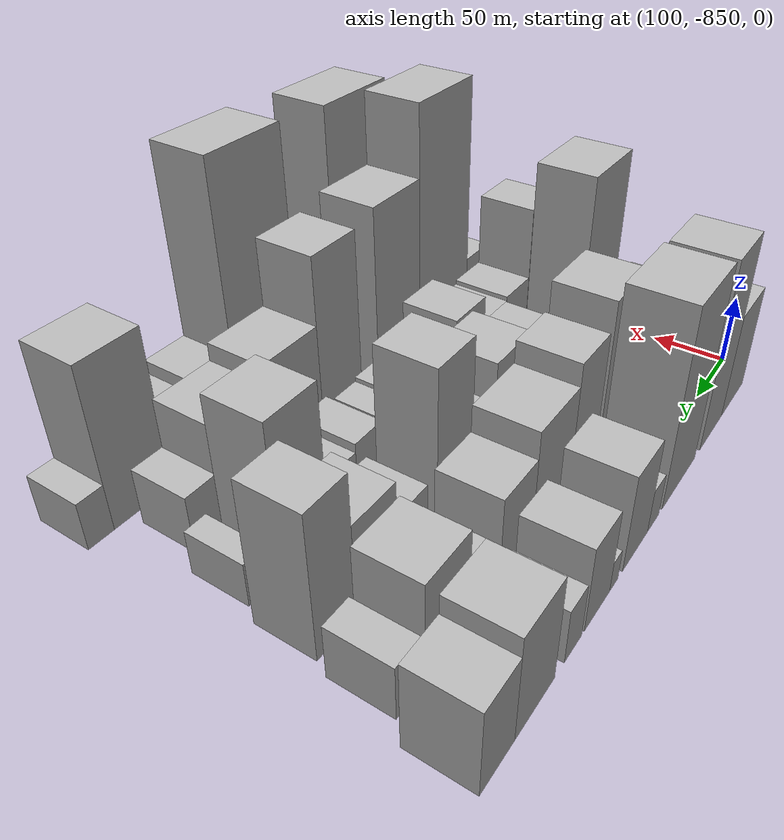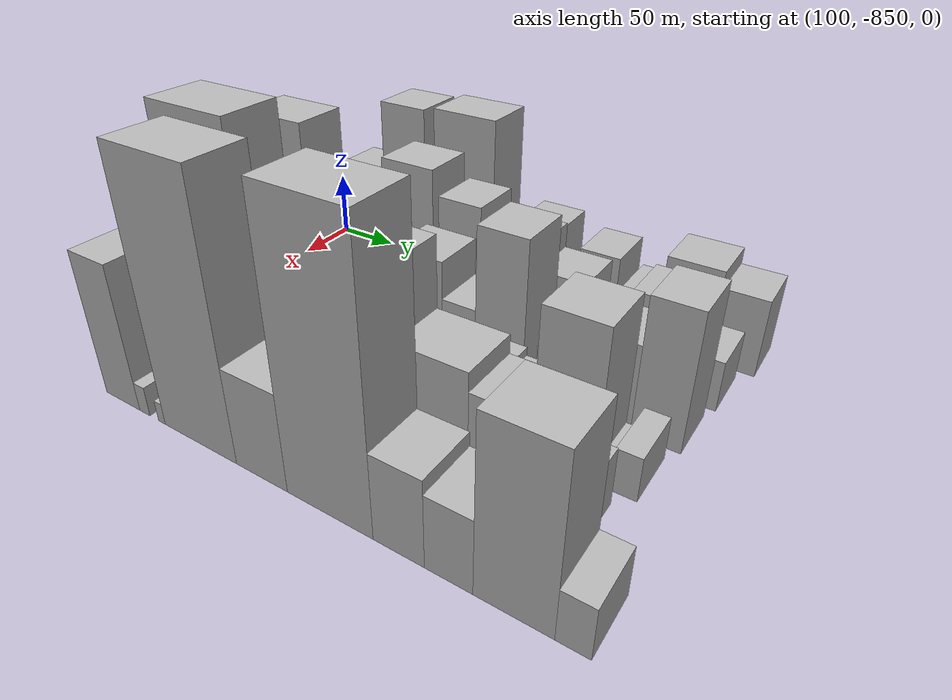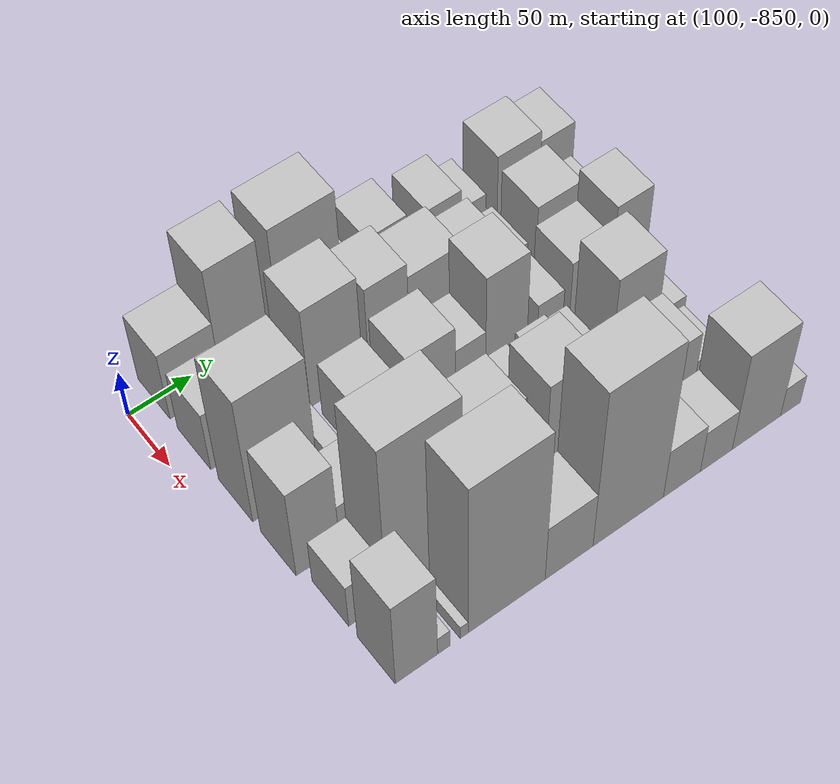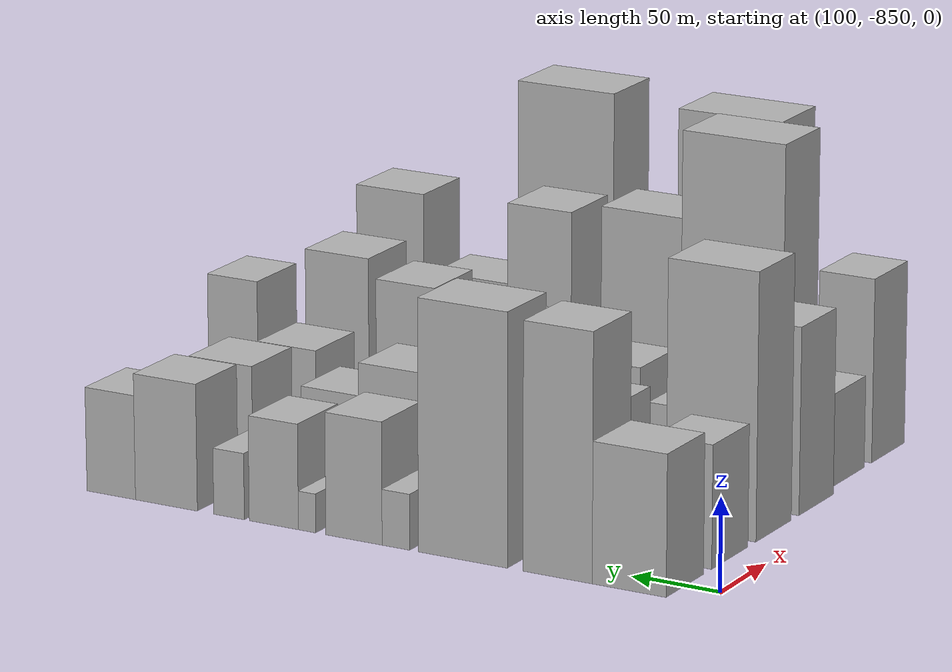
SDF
<sdf version="1.6">
 <world name="default">
  <model name="building_1">
   <static>1</static>
   <pose>100.0000 -809.0275 0 0.000000 0.000000 0.000000</pose>
   <link name="link">
    <pose>0 0 37.50 0 0 0</pose>
    <collision name="collision"><geometry><box><size>40.0000 41.9451 75.0000</size></box></geometry></collision>
    <visual name="visual">
     <cast_shadows>0</cast_shadows>
     <geometry><box><size>40.0000 41.9451 75.0000</size></box></geometry>
     <material>
      <script>
       <uri>model://HANNAS_wall/materials/scripts</uri>
       <uri>model://HANNAS_wall/materials/textures</uri>
       <name>vrc/HANNAS_wall</name>
      </script>
     </material>
    </visual>
   </link>
  </model>
  <model name="building_2">
   <static>1</static>
   <pose>100.0000 -768.1937 0 0.000000 0.000000 0.000000</pose>
   <link name="link">
    <pose>0 0 66.00 0 0 0</pose>
    <collision name="collision"><geometry><box><size>40.0000 39.7225 132.0000</size></box></geometry></collision>
    <visual name="visual">
     <cast_shadows>0</cast_shadows>
     <geometry><box><size>40.0000 39.7225 132.0000</size></box></geometry>
     <material>
      <script>
       <uri>model://HANNAS_wall/materials/scripts</uri>
       <uri>model://HANNAS_wall/materials/textures</uri>
       <name>vrc/HANNAS_wall</name>
      </script>
     </material>
    </visual>
   </link>
  </model>
  <model name="building_3">
   <static>1</static>
   <pose>100.0000 -713.2842 0 0.000000 0.000000 0.000000</pose>
   <link name="link">
    <pose>0 0 67.50 0 0 0</pose>
    <collision name="collision"><geometry><box><size>40.0000 52.0963 135.0000</size></box></geometry></collision>
    <visual name="visual">
     <cast_shadows>0</cast_shadows>
     <geometry><box><size>40.0000 52.0963 135.0000</size></box></geometry>
     <material>
      <script>
       <uri>model://HANNAS_wall/materials/scripts</uri>
       <uri>model://HANNAS_wall/materials/textures</uri>
       <name>vrc/HANNAS_wall</name>
      </script>
     </material>
    </visual>
   </link>
  </model>
  <model name="building_4">
   <static>1</static>
   <pose>100.0000 -674.0197 0 0.000000 0.000000 0.000000</pose>
   <link name="link">
    <pose>0 0 15.00 0 0 0</pose>
    <collision name="collision"><geometry><box><size>40.0000 16.4328 30.0000</size></box></geometry></collision>
    <visual name="visual">
     <cast_shadows>0</cast_shadows>
     <geometry><box><size>40.0000 16.4328 30.0000</size></box></geometry>
     <material>
      <script>
       <uri>model://HANNAS_wall/materials/scripts</uri>
       <uri>model://HANNAS_wall/materials/textures</uri>
       <name>vrc/HANNAS_wall</name>
      </script>
     </material>
    </visual>
   </link>
  </model>
  <model name="building_5">
   <static>1</static>
   <pose>100.0000 -649.0219 0 0.000000 0.000000 0.000000</pose>
   <link name="link">
    <pose>0 0 33.00 0 0 0</pose>
    <collision name="collision"><geometry><box><size>40.0000 33.5627 66.0000</size></box></geometry></collision>
    <visual name="visual">
     <cast_shadows>0</cast_shadows>
     <geometry><box><size>40.0000 33.5627 66.0000</size></box></geometry>
     <material>
      <script>
       <uri>model://HANNAS_wall/materials/scripts</uri>
       <uri>model://HANNAS_wall/materials/textures</uri>
       <name>vrc/HANNAS_wall</name>
      </script>
     </material>
    </visual>
   </link>
  </model>
  <model name="building_6">
   <static>1</static>
   <pose>100.0000 -621.0068 0 0.000000 0.000000 0.000000</pose>
   <link name="link">
    <pose>0 0 10.50 0 0 0</pose>
    <collision name="collision"><geometry><box><size>40.0000 10.4675 21.0000</size></box></geometry></collision>
    <visual name="visual">
     <cast_shadows>0</cast_shadows>
     <geometry><box><size>40.0000 10.4675 21.0000</size></box></geometry>
     <material>
      <script>
       <uri>model://HANNAS_wall/materials/scripts</uri>
       <uri>model://HANNAS_wall/materials/textures</uri>
       <name>vrc/HANNAS_wall</name>
      </script>
     </material>
    </visual>
   </link>
  </model>
  <model name="building_7">
   <static>1</static>
   <pose>100.0000 -600.9219 0 0.000000 0.000000 0.000000</pose>
   <link name="link">
    <pose>0 0 28.50 0 0 0</pose>
    <collision name="collision"><geometry><box><size>40.0000 29.7023 57.0000</size></box></geometry></collision>
    <visual name="visual">
     <cast_shadows>0</cast_shadows>
     <geometry><box><size>40.0000 29.7023 57.0000</size></box></geometry>
     <material>
      <script>
       <uri>model://HANNAS_wall/materials/scripts</uri>
       <uri>model://HANNAS_wall/materials/textures</uri>
       <name>vrc/HANNAS_wall</name>
      </script>
     </material>
    </visual>
   </link>
  </model>
  <model name="building_8">
   <static>1</static>
   <pose>100.0000 -573.7204 0 0.000000 0.000000 0.000000</pose>
   <link name="link">
    <pose>0 0 18.00 0 0 0</pose>
    <collision name="collision"><geometry><box><size>40.0000 18.7007 36.0000</size></box></geometry></collision>
    <visual name="visual">
     <cast_shadows>0</cast_shadows>
     <geometry><box><size>40.0000 18.7007 36.0000</size></box></geometry>
     <material>
      <script>
       <uri>model://HANNAS_wall/materials/scripts</uri>
       <uri>model://HANNAS_wall/materials/textures</uri>
       <name>vrc/HANNAS_wall</name>
      </script>
     </material>
    </visual>
   </link>
  </model>
  <model name="building_9">
   <static>1</static>
   <pose>100.0000 -535.2553 0 0.000000 0.000000 0.000000</pose>
   <link name="link">
    <pose>0 0 34.50 0 0 0</pose>
    <collision name="collision"><geometry><box><size>40.0000 38.2295 69.0000</size></box></geometry></collision>
    <visual name="visual">
     <cast_shadows>0</cast_shadows>
     <geometry><box><size>40.0000 38.2295 69.0000</size></box></geometry>
     <material>
      <script>
       <uri>model://HANNAS_wall/materials/scripts</uri>
       <uri>model://HANNAS_wall/materials/textures</uri>
       <name>vrc/HANNAS_wall</name>
      </script>
     </material>
    </visual>
   </link>
  </model>
  <model name="building_10">
   <static>1</static>
   <pose>100.0000 -501.0232 0 0.000000 0.000000 0.000000</pose>
   <link name="link">
    <pose>0 0 28.50 0 0 0</pose>
    <collision name="collision"><geometry><box><size>40.0000 30.2348 57.0000</size></box></geometry></collision>
    <visual name="visual">
     <cast_shadows>0</cast_shadows>
     <geometry><box><size>40.0000 30.2348 57.0000</size></box></geometry>
     <material>
      <script>
       <uri>model://HANNAS_wall/materials/scripts</uri>
       <uri>model://HANNAS_wall/materials/textures</uri>
       <name>vrc/HANNAS_wall</name>
      </script>
     </material>
    </visual>
   </link>
  </model>
  <model name="building_47">
   <static>1</static>
   <pose>149.0000 -813.4391 0 0.000000 0.000000 0.000000</pose>
   <link name="link">
    <pose>0 0 33.00 0 0 0</pose>
    <collision name="collision"><geometry><box><size>40.0000 33.1218 66.0000</size></box></geometry></collision>
    <visual name="visual">
     <cast_shadows>0</cast_shadows>
     <geometry><box><size>40.0000 33.1218 66.0000</size></box></geometry>
     <material>
      <script>
       <uri>model://HANNAS_wall/materials/scripts</uri>
       <uri>model://HANNAS_wall/materials/textures</uri>
       <name>vrc/HANNAS_wall</name>
      </script>
     </material>
    </visual>
   </link>
  </model>
  <model name="building_48">
   <static>1</static>
   <pose>149.0000 -781.6632 0 0.000000 0.000000 0.000000</pose>
   <link name="link">
    <pose>0 0 19.50 0 0 0</pose>
    <collision name="collision"><geometry><box><size>40.0000 20.4301 39.0000</size></box></geometry></collision>
    <visual name="visual">
     <cast_shadows>0</cast_shadows>
     <geometry><box><size>40.0000 20.4301 39.0000</size></box></geometry>
     <material>
      <script>
       <uri>model://HANNAS_wall/materials/scripts</uri>
       <uri>model://HANNAS_wall/materials/textures</uri>
       <name>vrc/HANNAS_wall</name>
      </script>
     </material>
    </visual>
   </link>
  </model>
  <model name="building_49">
   <static>1</static>
   <pose>149.0000 -758.9136 0 0.000000 0.000000 0.000000</pose>
   <link name="link">
    <pose>0 0 15.00 0 0 0</pose>
    <collision name="collision"><geometry><box><size>40.0000 17.0690 30.0000</size></box></geometry></collision>
    <visual name="visual">
     <cast_shadows>0</cast_shadows>
     <geometry><box><size>40.0000 17.0690 30.0000</size></box></geometry>
     <material>
      <script>
       <uri>model://HANNAS_wall/materials/scripts</uri>
       <uri>model://HANNAS_wall/materials/textures</uri>
       <name>vrc/HANNAS_wall</name>
      </script>
     </material>
    </visual>
   </link>
  </model>
  <model name="building_50">
   <static>1</static>
   <pose>149.0000 -728.6006 0 0.000000 0.000000 0.000000</pose>
   <link name="link">
    <pose>0 0 55.50 0 0 0</pose>
    <collision name="collision"><geometry><box><size>40.0000 43.5572 111.0000</size></box></geometry></collision>
    <visual name="visual">
     <cast_shadows>0</cast_shadows>
     <geometry><box><size>40.0000 43.5572 111.0000</size></box></geometry>
     <material>
      <script>
       <uri>model://HANNAS_wall/materials/scripts</uri>
       <uri>model://HANNAS_wall/materials/textures</uri>
       <name>vrc/HANNAS_wall</name>
      </script>
     </material>
    </visual>
   </link>
  </model>
  <model name="building_51">
   <static>1</static>
   <pose>149.0000 -684.7399 0 0.000000 0.000000 0.000000</pose>
   <link name="link">
    <pose>0 0 46.50 0 0 0</pose>
    <collision name="collision"><geometry><box><size>40.0000 34.1642 93.0000</size></box></geometry></collision>
    <visual name="visual">
     <cast_shadows>0</cast_shadows>
     <geometry><box><size>40.0000 34.1642 93.0000</size></box></geometry>
     <material>
      <script>
       <uri>model://HANNAS_wall/materials/scripts</uri>
       <uri>model://HANNAS_wall/materials/textures</uri>
       <name>vrc/HANNAS_wall</name>
      </script>
     </material>
    </visual>
   </link>
  </model>
  <model name="building_52">
   <static>1</static>
   <pose>149.0000 -645.3906 0 0.000000 0.000000 0.000000</pose>
   <link name="link">
    <pose>0 0 39.00 0 0 0</pose>
    <collision name="collision"><geometry><box><size>40.0000 44.5344 78.0000</size></box></geometry></collision>
    <visual name="visual">
     <cast_shadows>0</cast_shadows>
     <geometry><box><size>40.0000 44.5344 78.0000</size></box></geometry>
     <material>
      <script>
       <uri>model://HANNAS_wall/materials/scripts</uri>
       <uri>model://HANNAS_wall/materials/textures</uri>
       <name>vrc/HANNAS_wall</name>
      </script>
     </material>
    </visual>
   </link>
  </model>
  <model name="building_53">
   <static>1</static>
   <pose>149.0000 -605.6415 0 0.000000 0.000000 0.000000</pose>
   <link name="link">
    <pose>0 0 30.00 0 0 0</pose>
    <collision name="collision"><geometry><box><size>40.0000 34.9639 60.0000</size></box></geometry></collision>
    <visual name="visual">
     <cast_shadows>0</cast_shadows>
     <geometry><box><size>40.0000 34.9639 60.0000</size></box></geometry>
     <material>
      <script>
       <uri>model://HANNAS_wall/materials/scripts</uri>
       <uri>model://HANNAS_wall/materials/textures</uri>
       <name>vrc/HANNAS_wall</name>
      </script>
     </material>
    </visual>
   </link>
  </model>
  <model name="building_54">
   <static>1</static>
   <pose>149.0000 -575.5908 0 0.000000 0.000000 0.000000</pose>
   <link name="link">
    <pose>0 0 16.50 0 0 0</pose>
    <collision name="collision"><geometry><box><size>40.0000 19.1374 33.0000</size></box></geometry></collision>
    <visual name="visual">
     <cast_shadows>0</cast_shadows>
     <geometry><box><size>40.0000 19.1374 33.0000</size></box></geometry>
     <material>
      <script>
       <uri>model://HANNAS_wall/materials/scripts</uri>
       <uri>model://HANNAS_wall/materials/textures</uri>
       <name>vrc/HANNAS_wall</name>
      </script>
     </material>
    </visual>
   </link>
  </model>
  <model name="building_55">
   <static>1</static>
   <pose>149.0000 -538.6001 0 0.000000 0.000000 0.000000</pose>
   <link name="link">
    <pose>0 0 33.00 0 0 0</pose>
    <collision name="collision"><geometry><box><size>40.0000 38.8440 66.0000</size></box></geometry></collision>
    <visual name="visual">
     <cast_shadows>0</cast_shadows>
     <geometry><box><size>40.0000 38.8440 66.0000</size></box></geometry>
     <material>
      <script>
       <uri>model://HANNAS_wall/materials/scripts</uri>
       <uri>model://HANNAS_wall/materials/textures</uri>
       <name>vrc/HANNAS_wall</name>
      </script>
     </material>
    </visual>
   </link>
  </model>
  <model name="building_56">
   <static>1</static>
   <pose>149.0000 -506.0128 0 0.000000 0.000000 0.000000</pose>
   <link name="link">
    <pose>0 0 18.00 0 0 0</pose>
    <collision name="collision"><geometry><box><size>40.0000 20.3304 36.0000</size></box></geometry></collision>
    <visual name="visual">
     <cast_shadows>0</cast_shadows>
     <geometry><box><size>40.0000 20.3304 36.0000</size></box></geometry>
     <material>
      <script>
       <uri>model://HANNAS_wall/materials/scripts</uri>
       <uri>model://HANNAS_wall/materials/textures</uri>
       <name>vrc/HANNAS_wall</name>
      </script>
     </material>
    </visual>
   </link>
  </model>
  <model name="building_95">
   <static>1</static>
   <pose>198.0000 -803.9887 0 0.000000 0.000000 0.000000</pose>
   <link name="link">
    <pose>0 0 72.00 0 0 0</pose>
    <collision name="collision"><geometry><box><size>40.0000 52.0225 144.0000</size></box></geometry></collision>
    <visual name="visual">
     <cast_shadows>0</cast_shadows>
     <geometry><box><size>40.0000 52.0225 144.0000</size></box></geometry>
     <material>
      <script>
       <uri>model://HANNAS_wall/materials/scripts</uri>
       <uri>model://HANNAS_wall/materials/textures</uri>
       <name>vrc/HANNAS_wall</name>
      </script>
     </material>
    </visual>
   </link>
  </model>
  <model name="building_96">
   <static>1</static>
   <pose>198.0000 -763.5319 0 0.000000 0.000000 0.000000</pose>
   <link name="link">
    <pose>0 0 13.50 0 0 0</pose>
    <collision name="collision"><geometry><box><size>40.0000 12.8911 27.0000</size></box></geometry></collision>
    <visual name="visual">
     <cast_shadows>0</cast_shadows>
     <geometry><box><size>40.0000 12.8911 27.0000</size></box></geometry>
     <material>
      <script>
       <uri>model://HANNAS_wall/materials/scripts</uri>
       <uri>model://HANNAS_wall/materials/textures</uri>
       <name>vrc/HANNAS_wall</name>
      </script>
     </material>
    </visual>
   </link>
  </model>
  <model name="building_97">
   <static>1</static>
   <pose>198.0000 -729.2786 0 0.000000 0.000000 0.000000</pose>
   <link name="link">
    <pose>0 0 30.00 0 0 0</pose>
    <collision name="collision"><geometry><box><size>40.0000 35.6156 60.0000</size></box></geometry></collision>
    <visual name="visual">
     <cast_shadows>0</cast_shadows>
     <geometry><box><size>40.0000 35.6156 60.0000</size></box></geometry>
     <material>
      <script>
       <uri>model://HANNAS_wall/materials/scripts</uri>
       <uri>model://HANNAS_wall/materials/textures</uri>
       <name>vrc/HANNAS_wall</name>
      </script>
     </material>
    </visual>
   </link>
  </model>
  <model name="building_98">
   <static>1</static>
   <pose>198.0000 -685.6175 0 0.000000 0.000000 0.000000</pose>
   <link name="link">
    <pose>0 0 37.50 0 0 0</pose>
    <collision name="collision"><geometry><box><size>40.0000 39.7067 75.0000</size></box></geometry></collision>
    <visual name="visual">
     <cast_shadows>0</cast_shadows>
     <geometry><box><size>40.0000 39.7067 75.0000</size></box></geometry>
     <material>
      <script>
       <uri>model://HANNAS_wall/materials/scripts</uri>
       <uri>model://HANNAS_wall/materials/textures</uri>
       <name>vrc/HANNAS_wall</name>
      </script>
     </material>
    </visual>
   </link>
  </model>
  <model name="building_99">
   <static>1</static>
   <pose>198.0000 -653.0751 0 0.000000 0.000000 0.000000</pose>
   <link name="link">
    <pose>0 0 24.00 0 0 0</pose>
    <collision name="collision"><geometry><box><size>40.0000 25.3780 48.0000</size></box></geometry></collision>
    <visual name="visual">
     <cast_shadows>0</cast_shadows>
     <geometry><box><size>40.0000 25.3780 48.0000</size></box></geometry>
     <material>
      <script>
       <uri>model://HANNAS_wall/materials/scripts</uri>
       <uri>model://HANNAS_wall/materials/textures</uri>
       <name>vrc/HANNAS_wall</name>
      </script>
     </material>
    </visual>
   </link>
  </model>
  <model name="building_100">
   <static>1</static>
   <pose>198.0000 -622.5888 0 0.000000 0.000000 0.000000</pose>
   <link name="link">
    <pose>0 0 54.00 0 0 0</pose>
    <collision name="collision"><geometry><box><size>40.0000 35.5946 108.0000</size></box></geometry></collision>
    <visual name="visual">
     <cast_shadows>0</cast_shadows>
     <geometry><box><size>40.0000 35.5946 108.0000</size></box></geometry>
     <material>
      <script>
       <uri>model://HANNAS_wall/materials/scripts</uri>
       <uri>model://HANNAS_wall/materials/textures</uri>
       <name>vrc/HANNAS_wall</name>
      </script>
     </material>
    </visual>
   </link>
  </model>
  <model name="building_101">
   <static>1</static>
   <pose>198.0000 -584.6064 0 0.000000 0.000000 0.000000</pose>
   <link name="link">
    <pose>0 0 19.50 0 0 0</pose>
    <collision name="collision"><geometry><box><size>40.0000 22.3702 39.0000</size></box></geometry></collision>
    <visual name="visual">
     <cast_shadows>0</cast_shadows>
     <geometry><box><size>40.0000 22.3702 39.0000</size></box></geometry>
     <material>
      <script>
       <uri>model://HANNAS_wall/materials/scripts</uri>
       <uri>model://HANNAS_wall/materials/textures</uri>
       <name>vrc/HANNAS_wall</name>
      </script>
     </material>
    </visual>
   </link>
  </model>
  <model name="building_102">
   <static>1</static>
   <pose>198.0000 -549.4436 0 0.000000 0.000000 0.000000</pose>
   <link name="link">
    <pose>0 0 31.50 0 0 0</pose>
    <collision name="collision"><geometry><box><size>40.0000 35.9553 63.0000</size></box></geometry></collision>
    <visual name="visual">
     <cast_shadows>0</cast_shadows>
     <geometry><box><size>40.0000 35.9553 63.0000</size></box></geometry>
     <material>
      <script>
       <uri>model://HANNAS_wall/materials/scripts</uri>
       <uri>model://HANNAS_wall/materials/textures</uri>
       <name>vrc/HANNAS_wall</name>
      </script>
     </material>
    </visual>
   </link>
  </model>
  <model name="building_103">
   <static>1</static>
   <pose>198.0000 -515.9326 0 0.000000 0.000000 0.000000</pose>
   <link name="link">
    <pose>0 0 48.00 0 0 0</pose>
    <collision name="collision"><geometry><box><size>40.0000 31.0666 96.0000</size></box></geometry></collision>
    <visual name="visual">
     <cast_shadows>0</cast_shadows>
     <geometry><box><size>40.0000 31.0666 96.0000</size></box></geometry>
     <material>
      <script>
       <uri>model://HANNAS_wall/materials/scripts</uri>
       <uri>model://HANNAS_wall/materials/textures</uri>
       <name>vrc/HANNAS_wall</name>
      </script>
     </material>
    </visual>
   </link>
  </model>
  <model name="building_147">
   <static>1</static>
   <pose>247.0000 -812.9321 0 0.000000 0.000000 0.000000</pose>
   <link name="link">
    <pose>0 0 51.00 0 0 0</pose>
    <collision name="collision"><geometry><box><size>40.0000 34.1358 102.0000</size></box></geometry></collision>
    <visual name="visual">
     <cast_shadows>0</cast_shadows>
     <geometry><box><size>40.0000 34.1358 102.0000</size></box></geometry>
     <material>
      <script>
       <uri>model://HANNAS_wall/materials/scripts</uri>
       <uri>model://HANNAS_wall/materials/textures</uri>
       <name>vrc/HANNAS_wall</name>
      </script>
     </material>
    </visual>
   </link>
  </model>
  <model name="building_148">
   <static>1</static>
   <pose>247.0000 -780.7460 0 0.000000 0.000000 0.000000</pose>
   <link name="link">
    <pose>0 0 25.50 0 0 0</pose>
    <collision name="collision"><geometry><box><size>40.0000 30.2364 51.0000</size></box></geometry></collision>
    <visual name="visual">
     <cast_shadows>0</cast_shadows>
     <geometry><box><size>40.0000 30.2364 51.0000</size></box></geometry>
     <material>
      <script>
       <uri>model://HANNAS_wall/materials/scripts</uri>
       <uri>model://HANNAS_wall/materials/textures</uri>
       <name>vrc/HANNAS_wall</name>
      </script>
     </material>
    </visual>
   </link>
  </model>
  <model name="building_149">
   <static>1</static>
   <pose>247.0000 -753.4497 0 0.000000 0.000000 0.000000</pose>
   <link name="link">
    <pose>0 0 24.00 0 0 0</pose>
    <collision name="collision"><geometry><box><size>40.0000 24.3560 48.0000</size></box></geometry></collision>
    <visual name="visual">
     <cast_shadows>0</cast_shadows>
     <geometry><box><size>40.0000 24.3560 48.0000</size></box></geometry>
     <material>
      <script>
       <uri>model://HANNAS_wall/materials/scripts</uri>
       <uri>model://HANNAS_wall/materials/textures</uri>
       <name>vrc/HANNAS_wall</name>
      </script>
     </material>
    </visual>
   </link>
  </model>
  <model name="building_150">
   <static>1</static>
   <pose>247.0000 -719.1406 0 0.000000 0.000000 0.000000</pose>
   <link name="link">
    <pose>0 0 33.00 0 0 0</pose>
    <collision name="collision"><geometry><box><size>40.0000 34.2622 66.0000</size></box></geometry></collision>
    <visual name="visual">
     <cast_shadows>0</cast_shadows>
     <geometry><box><size>40.0000 34.2622 66.0000</size></box></geometry>
     <material>
      <script>
       <uri>model://HANNAS_wall/materials/scripts</uri>
       <uri>model://HANNAS_wall/materials/textures</uri>
       <name>vrc/HANNAS_wall</name>
      </script>
     </material>
    </visual>
   </link>
  </model>
  <model name="building_151">
   <static>1</static>
   <pose>247.0000 -687.9479 0 0.000000 0.000000 0.000000</pose>
   <link name="link">
    <pose>0 0 19.50 0 0 0</pose>
    <collision name="collision"><geometry><box><size>40.0000 20.1233 39.0000</size></box></geometry></collision>
    <visual name="visual">
     <cast_shadows>0</cast_shadows>
     <geometry><box><size>40.0000 20.1233 39.0000</size></box></geometry>
     <material>
      <script>
       <uri>model://HANNAS_wall/materials/scripts</uri>
       <uri>model://HANNAS_wall/materials/textures</uri>
       <name>vrc/HANNAS_wall</name>
      </script>
     </material>
    </visual>
   </link>
  </model>
  <model name="building_152">
   <static>1</static>
   <pose>247.0000 -660.7308 0 0.000000 0.000000 0.000000</pose>
   <link name="link">
    <pose>0 0 19.50 0 0 0</pose>
    <collision name="collision"><geometry><box><size>40.0000 20.3109 39.0000</size></box></geometry></collision>
    <visual name="visual">
     <cast_shadows>0</cast_shadows>
     <geometry><box><size>40.0000 20.3109 39.0000</size></box></geometry>
     <material>
      <script>
       <uri>model://HANNAS_wall/materials/scripts</uri>
       <uri>model://HANNAS_wall/materials/textures</uri>
       <name>vrc/HANNAS_wall</name>
      </script>
     </material>
    </visual>
   </link>
  </model>
  <model name="building_153">
   <static>1</static>
   <pose>247.0000 -640.2253 0 0.000000 0.000000 0.000000</pose>
   <link name="link">
    <pose>0 0 18.00 0 0 0</pose>
    <collision name="collision"><geometry><box><size>40.0000 20.7001 36.0000</size></box></geometry></collision>
    <visual name="visual">
     <cast_shadows>0</cast_shadows>
     <geometry><box><size>40.0000 20.7001 36.0000</size></box></geometry>
     <material>
      <script>
       <uri>model://HANNAS_wall/materials/scripts</uri>
       <uri>model://HANNAS_wall/materials/textures</uri>
       <name>vrc/HANNAS_wall</name>
      </script>
     </material>
    </visual>
   </link>
  </model>
  <model name="building_154">
   <static>1</static>
   <pose>247.0000 -626.3738 0 0.000000 0.000000 0.000000</pose>
   <link name="link">
    <pose>0 0 7.50 0 0 0</pose>
    <collision name="collision"><geometry><box><size>40.0000 7.0030 15.0000</size></box></geometry></collision>
    <visual name="visual">
     <cast_shadows>0</cast_shadows>
     <geometry><box><size>40.0000 7.0030 15.0000</size></box></geometry>
     <material>
      <script>
       <uri>model://HANNAS_wall/materials/scripts</uri>
       <uri>model://HANNAS_wall/materials/textures</uri>
       <name>vrc/HANNAS_wall</name>
      </script>
     </material>
    </visual>
   </link>
  </model>
  <model name="building_155">
   <static>1</static>
   <pose>247.0000 -610.4012 0 0.000000 0.000000 0.000000</pose>
   <link name="link">
    <pose>0 0 21.00 0 0 0</pose>
    <collision name="collision"><geometry><box><size>40.0000 24.9423 42.0000</size></box></geometry></collision>
    <visual name="visual">
     <cast_shadows>0</cast_shadows>
     <geometry><box><size>40.0000 24.9423 42.0000</size></box></geometry>
     <material>
      <script>
       <uri>model://HANNAS_wall/materials/scripts</uri>
       <uri>model://HANNAS_wall/materials/textures</uri>
       <name>vrc/HANNAS_wall</name>
      </script>
     </material>
    </visual>
   </link>
  </model>
  <model name="building_156">
   <static>1</static>
   <pose>247.0000 -588.5129 0 0.000000 0.000000 0.000000</pose>
   <link name="link">
    <pose>0 0 18.00 0 0 0</pose>
    <collision name="collision"><geometry><box><size>40.0000 18.8343 36.0000</size></box></geometry></collision>
    <visual name="visual">
     <cast_shadows>0</cast_shadows>
     <geometry><box><size>40.0000 18.8343 36.0000</size></box></geometry>
     <material>
      <script>
       <uri>model://HANNAS_wall/materials/scripts</uri>
       <uri>model://HANNAS_wall/materials/textures</uri>
       <name>vrc/HANNAS_wall</name>
      </script>
     </material>
    </visual>
   </link>
  </model>
  <model name="building_157">
   <static>1</static>
   <pose>247.0000 -551.3886 0 0.000000 0.000000 0.000000</pose>
   <link name="link">
    <pose>0 0 51.00 0 0 0</pose>
    <collision name="collision"><geometry><box><size>40.0000 39.4142 102.0000</size></box></geometry></collision>
    <visual name="visual">
     <cast_shadows>0</cast_shadows>
     <geometry><box><size>40.0000 39.4142 102.0000</size></box></geometry>
     <material>
      <script>
       <uri>model://HANNAS_wall/materials/scripts</uri>
       <uri>model://HANNAS_wall/materials/textures</uri>
       <name>vrc/HANNAS_wall</name>
      </script>
     </material>
    </visual>
   </link>
  </model>
  <model name="building_158">
   <static>1</static>
   <pose>247.0000 -528.5553 0 0.000000 0.000000 0.000000</pose>
   <link name="link">
    <pose>0 0 7.50 0 0 0</pose>
    <collision name="collision"><geometry><box><size>40.0000 6.2526 15.0000</size></box></geometry></collision>
    <visual name="visual">
     <cast_shadows>0</cast_shadows>
     <geometry><box><size>40.0000 6.2526 15.0000</size></box></geometry>
     <material>
      <script>
       <uri>model://HANNAS_wall/materials/scripts</uri>
       <uri>model://HANNAS_wall/materials/textures</uri>
       <name>vrc/HANNAS_wall</name>
      </script>
     </material>
    </visual>
   </link>
  </model>
  <model name="building_159">
   <static>1</static>
   <pose>247.0000 -514.6654 0 0.000000 0.000000 0.000000</pose>
   <link name="link">
    <pose>0 0 15.00 0 0 0</pose>
    <collision name="collision"><geometry><box><size>40.0000 15.5271 30.0000</size></box></geometry></collision>
    <visual name="visual">
     <cast_shadows>0</cast_shadows>
     <geometry><box><size>40.0000 15.5271 30.0000</size></box></geometry>
     <material>
      <script>
       <uri>model://HANNAS_wall/materials/scripts</uri>
       <uri>model://HANNAS_wall/materials/textures</uri>
       <name>vrc/HANNAS_wall</name>
      </script>
     </material>
    </visual>
   </link>
  </model>
  <model name="building_202">
   <static>1</static>
   <pose>296.0000 -809.4462 0 0.000000 0.000000 0.000000</pose>
   <link name="link">
    <pose>0 0 25.50 0 0 0</pose>
    <collision name="collision"><geometry><box><size>40.0000 29.1075 51.0000</size></box></geometry></collision>
    <visual name="visual">
     <cast_shadows>0</cast_shadows>
     <geometry><box><size>40.0000 29.1075 51.0000</size></box></geometry>
     <material>
      <script>
       <uri>model://HANNAS_wall/materials/scripts</uri>
       <uri>model://HANNAS_wall/materials/textures</uri>
       <name>vrc/HANNAS_wall</name>
      </script>
     </material>
    </visual>
   </link>
  </model>
  <model name="building_203">
   <static>1</static>
   <pose>296.0000 -764.6525 0 0.000000 0.000000 0.000000</pose>
   <link name="link">
    <pose>0 0 91.50 0 0 0</pose>
    <collision name="collision"><geometry><box><size>40.0000 60.4800 183.0000</size></box></geometry></collision>
    <visual name="visual">
     <cast_shadows>0</cast_shadows>
     <geometry><box><size>40.0000 60.4800 183.0000</size></box></geometry>
     <material>
      <script>
       <uri>model://HANNAS_wall/materials/scripts</uri>
       <uri>model://HANNAS_wall/materials/textures</uri>
       <name>vrc/HANNAS_wall</name>
      </script>
     </material>
    </visual>
   </link>
  </model>
  <model name="building_204">
   <static>1</static>
   <pose>296.0000 -710.3165 0 0.000000 0.000000 0.000000</pose>
   <link name="link">
    <pose>0 0 67.50 0 0 0</pose>
    <collision name="collision"><geometry><box><size>40.0000 48.1919 135.0000</size></box></geometry></collision>
    <visual name="visual">
     <cast_shadows>0</cast_shadows>
     <geometry><box><size>40.0000 48.1919 135.0000</size></box></geometry>
     <material>
      <script>
       <uri>model://HANNAS_wall/materials/scripts</uri>
       <uri>model://HANNAS_wall/materials/textures</uri>
       <name>vrc/HANNAS_wall</name>
      </script>
     </material>
    </visual>
   </link>
  </model>
  <model name="building_205">
   <static>1</static>
   <pose>296.0000 -672.1282 0 0.000000 0.000000 0.000000</pose>
   <link name="link">
    <pose>0 0 9.00 0 0 0</pose>
    <collision name="collision"><geometry><box><size>40.0000 8.1846 18.0000</size></box></geometry></collision>
    <visual name="visual">
     <cast_shadows>0</cast_shadows>
     <geometry><box><size>40.0000 8.1846 18.0000</size></box></geometry>
     <material>
      <script>
       <uri>model://HANNAS_wall/materials/scripts</uri>
       <uri>model://HANNAS_wall/materials/textures</uri>
       <name>vrc/HANNAS_wall</name>
      </script>
     </material>
    </visual>
   </link>
  </model>
  <model name="building_206">
   <static>1</static>
   <pose>296.0000 -648.5758 0 0.000000 0.000000 0.000000</pose>
   <link name="link">
    <pose>0 0 64.50 0 0 0</pose>
    <collision name="collision"><geometry><box><size>40.0000 38.9203 129.0000</size></box></geometry></collision>
    <visual name="visual">
     <cast_shadows>0</cast_shadows>
     <geometry><box><size>40.0000 38.9203 129.0000</size></box></geometry>
     <material>
      <script>
       <uri>model://HANNAS_wall/materials/scripts</uri>
       <uri>model://HANNAS_wall/materials/textures</uri>
       <name>vrc/HANNAS_wall</name>
      </script>
     </material>
    </visual>
   </link>
  </model>
  <model name="building_207">
   <static>1</static>
   <pose>296.0000 -606.0671 0 0.000000 0.000000 0.000000</pose>
   <link name="link">
    <pose>0 0 42.00 0 0 0</pose>
    <collision name="collision"><geometry><box><size>40.0000 46.0971 84.0000</size></box></geometry></collision>
    <visual name="visual">
     <cast_shadows>0</cast_shadows>
     <geometry><box><size>40.0000 46.0971 84.0000</size></box></geometry>
     <material>
      <script>
       <uri>model://HANNAS_wall/materials/scripts</uri>
       <uri>model://HANNAS_wall/materials/textures</uri>
       <name>vrc/HANNAS_wall</name>
      </script>
     </material>
    </visual>
   </link>
  </model>
  <model name="building_208">
   <static>1</static>
   <pose>296.0000 -561.6475 0 0.000000 0.000000 0.000000</pose>
   <link name="link">
    <pose>0 0 36.00 0 0 0</pose>
    <collision name="collision"><geometry><box><size>40.0000 42.7422 72.0000</size></box></geometry></collision>
    <visual name="visual">
     <cast_shadows>0</cast_shadows>
     <geometry><box><size>40.0000 42.7422 72.0000</size></box></geometry>
     <material>
      <script>
       <uri>model://HANNAS_wall/materials/scripts</uri>
       <uri>model://HANNAS_wall/materials/textures</uri>
       <name>vrc/HANNAS_wall</name>
      </script>
     </material>
    </visual>
   </link>
  </model>
  <model name="building_209">
   <static>1</static>
   <pose>296.0000 -529.1568 0 0.000000 0.000000 0.000000</pose>
   <link name="link">
    <pose>0 0 19.50 0 0 0</pose>
    <collision name="collision"><geometry><box><size>40.0000 22.2392 39.0000</size></box></geometry></collision>
    <visual name="visual">
     <cast_shadows>0</cast_shadows>
     <geometry><box><size>40.0000 22.2392 39.0000</size></box></geometry>
     <material>
      <script>
       <uri>model://HANNAS_wall/materials/scripts</uri>
       <uri>model://HANNAS_wall/materials/textures</uri>
       <name>vrc/HANNAS_wall</name>
      </script>
     </material>
    </visual>
   </link>
  </model>
  <model name="building_250">
   <static>1</static>
   <pose>345.0000 -807.6891 0 0.000000 0.000000 0.000000</pose>
   <link name="link">
    <pose>0 0 51.00 0 0 0</pose>
    <collision name="collision"><geometry><box><size>40.0000 32.6218 102.0000</size></box></geometry></collision>
    <visual name="visual">
     <cast_shadows>0</cast_shadows>
     <geometry><box><size>40.0000 32.6218 102.0000</size></box></geometry>
     <material>
      <script>
       <uri>model://HANNAS_wall/materials/scripts</uri>
       <uri>model://HANNAS_wall/materials/textures</uri>
       <name>vrc/HANNAS_wall</name>
      </script>
     </material>
    </visual>
   </link>
  </model>
  <model name="building_251">
   <static>1</static>
   <pose>345.0000 -786.5540 0 0.000000 0.000000 0.000000</pose>
   <link name="link">
    <pose>0 0 10.50 0 0 0</pose>
    <collision name="collision"><geometry><box><size>40.0000 9.6483 21.0000</size></box></geometry></collision>
    <visual name="visual">
     <cast_shadows>0</cast_shadows>
     <geometry><box><size>40.0000 9.6483 21.0000</size></box></geometry>
     <material>
      <script>
       <uri>model://HANNAS_wall/materials/scripts</uri>
       <uri>model://HANNAS_wall/materials/textures</uri>
       <name>vrc/HANNAS_wall</name>
      </script>
     </material>
    </visual>
   </link>
  </model>
  <model name="building_252">
   <static>1</static>
   <pose>345.0000 -770.6298 0 0.000000 0.000000 0.000000</pose>
   <link name="link">
    <pose>0 0 7.50 0 0 0</pose>
    <collision name="collision"><geometry><box><size>40.0000 6.2000 15.0000</size></box></geometry></collision>
    <visual name="visual">
     <cast_shadows>0</cast_shadows>
     <geometry><box><size>40.0000 6.2000 15.0000</size></box></geometry>
     <material>
      <script>
       <uri>model://HANNAS_wall/materials/scripts</uri>
       <uri>model://HANNAS_wall/materials/textures</uri>
       <name>vrc/HANNAS_wall</name>
      </script>
     </material>
    </visual>
   </link>
  </model>
  <model name="building_253">
   <static>1</static>
   <pose>345.0000 -736.8552 0 0.000000 0.000000 0.000000</pose>
   <link name="link">
    <pose>0 0 90.00 0 0 0</pose>
    <collision name="collision"><geometry><box><size>40.0000 61.3492 180.0000</size></box></geometry></collision>
    <visual name="visual">
     <cast_shadows>0</cast_shadows>
     <geometry><box><size>40.0000 61.3492 180.0000</size></box></geometry>
     <material>
      <script>
       <uri>model://HANNAS_wall/materials/scripts</uri>
       <uri>model://HANNAS_wall/materials/textures</uri>
       <name>vrc/HANNAS_wall</name>
      </script>
     </material>
    </visual>
   </link>
  </model>
  <model name="building_254">
   <static>1</static>
   <pose>345.0000 -686.5898 0 0.000000 0.000000 0.000000</pose>
   <link name="link">
    <pose>0 0 33.00 0 0 0</pose>
    <collision name="collision"><geometry><box><size>40.0000 39.1816 66.0000</size></box></geometry></collision>
    <visual name="visual">
     <cast_shadows>0</cast_shadows>
     <geometry><box><size>40.0000 39.1816 66.0000</size></box></geometry>
     <material>
      <script>
       <uri>model://HANNAS_wall/materials/scripts</uri>
       <uri>model://HANNAS_wall/materials/textures</uri>
       <name>vrc/HANNAS_wall</name>
      </script>
     </material>
    </visual>
   </link>
  </model>
  <model name="building_255">
   <static>1</static>
   <pose>345.0000 -637.4531 0 0.000000 0.000000 0.000000</pose>
   <link name="link">
    <pose>0 0 91.50 0 0 0</pose>
    <collision name="collision"><geometry><box><size>40.0000 59.0917 183.0000</size></box></geometry></collision>
    <visual name="visual">
     <cast_shadows>0</cast_shadows>
     <geometry><box><size>40.0000 59.0917 183.0000</size></box></geometry>
     <material>
      <script>
       <uri>model://HANNAS_wall/materials/scripts</uri>
       <uri>model://HANNAS_wall/materials/textures</uri>
       <name>vrc/HANNAS_wall</name>
      </script>
     </material>
    </visual>
   </link>
  </model>
  <model name="building_256">
   <static>1</static>
   <pose>345.0000 -592.0330 0 0.000000 0.000000 0.000000</pose>
   <link name="link">
    <pose>0 0 28.50 0 0 0</pose>
    <collision name="collision"><geometry><box><size>40.0000 31.7486 57.0000</size></box></geometry></collision>
    <visual name="visual">
     <cast_shadows>0</cast_shadows>
     <geometry><box><size>40.0000 31.7486 57.0000</size></box></geometry>
     <material>
      <script>
       <uri>model://HANNAS_wall/materials/scripts</uri>
       <uri>model://HANNAS_wall/materials/textures</uri>
       <name>vrc/HANNAS_wall</name>
      </script>
     </material>
    </visual>
   </link>
  </model>
  <model name="building_257">
   <static>1</static>
   <pose>345.0000 -562.2584 0 0.000000 0.000000 0.000000</pose>
   <link name="link">
    <pose>0 0 24.00 0 0 0</pose>
    <collision name="collision"><geometry><box><size>40.0000 27.8006 48.0000</size></box></geometry></collision>
    <visual name="visual">
     <cast_shadows>0</cast_shadows>
     <geometry><box><size>40.0000 27.8006 48.0000</size></box></geometry>
     <material>
      <script>
       <uri>model://HANNAS_wall/materials/scripts</uri>
       <uri>model://HANNAS_wall/materials/textures</uri>
       <name>vrc/HANNAS_wall</name>
      </script>
     </material>
    </visual>
   </link>
  </model>
  <model name="building_258">
   <static>1</static>
   <pose>345.0000 -526.9132 0 0.000000 0.000000 0.000000</pose>
   <link name="link">
    <pose>0 0 55.50 0 0 0</pose>
    <collision name="collision"><geometry><box><size>40.0000 42.8898 111.0000</size></box></geometry></collision>
    <visual name="visual">
     <cast_shadows>0</cast_shadows>
     <geometry><box><size>40.0000 42.8898 111.0000</size></box></geometry>
     <material>
      <script>
       <uri>model://HANNAS_wall/materials/scripts</uri>
       <uri>model://HANNAS_wall/materials/textures</uri>
       <name>vrc/HANNAS_wall</name>
      </script>
     </material>
    </visual>
   </link>
  </model>
  <model name="building_259">
   <static>1</static>
   <pose>345.0000 -496.5289 0 0.000000 0.000000 0.000000</pose>
   <link name="link">
    <pose>0 0 16.50 0 0 0</pose>
    <collision name="collision"><geometry><box><size>40.0000 17.8786 33.0000</size></box></geometry></collision>
    <visual name="visual">
     <cast_shadows>0</cast_shadows>
     <geometry><box><size>40.0000 17.8786 33.0000</size></box></geometry>
     <material>
      <script>
       <uri>model://HANNAS_wall/materials/scripts</uri>
       <uri>model://HANNAS_wall/materials/textures</uri>
       <name>vrc/HANNAS_wall</name>
      </script>
     </material>
    </visual>
   </link>
  </model>
 </world>
</sdf>
